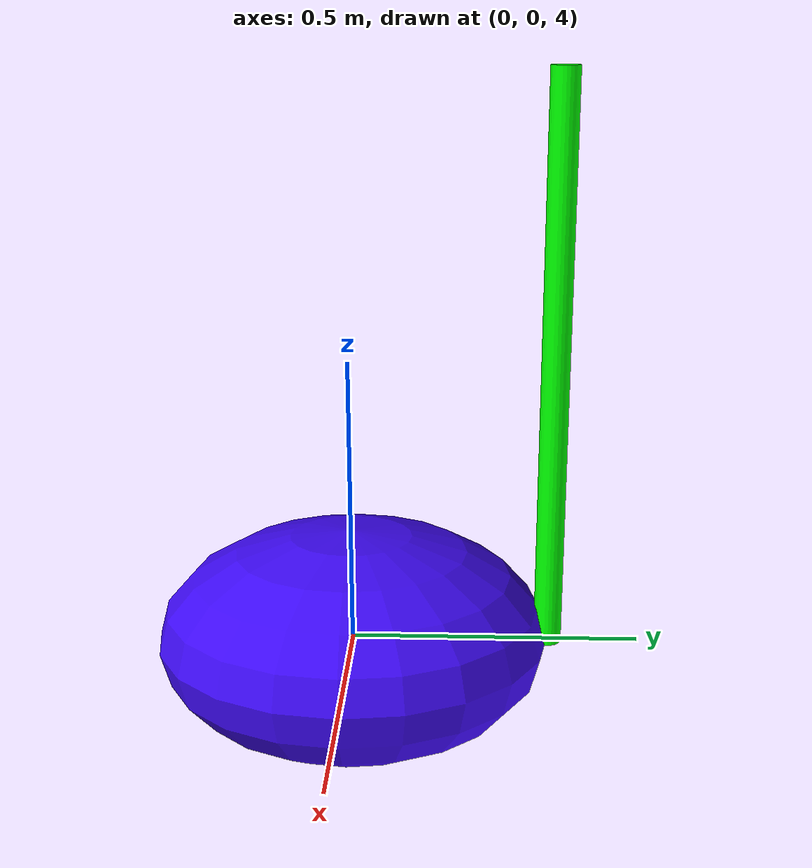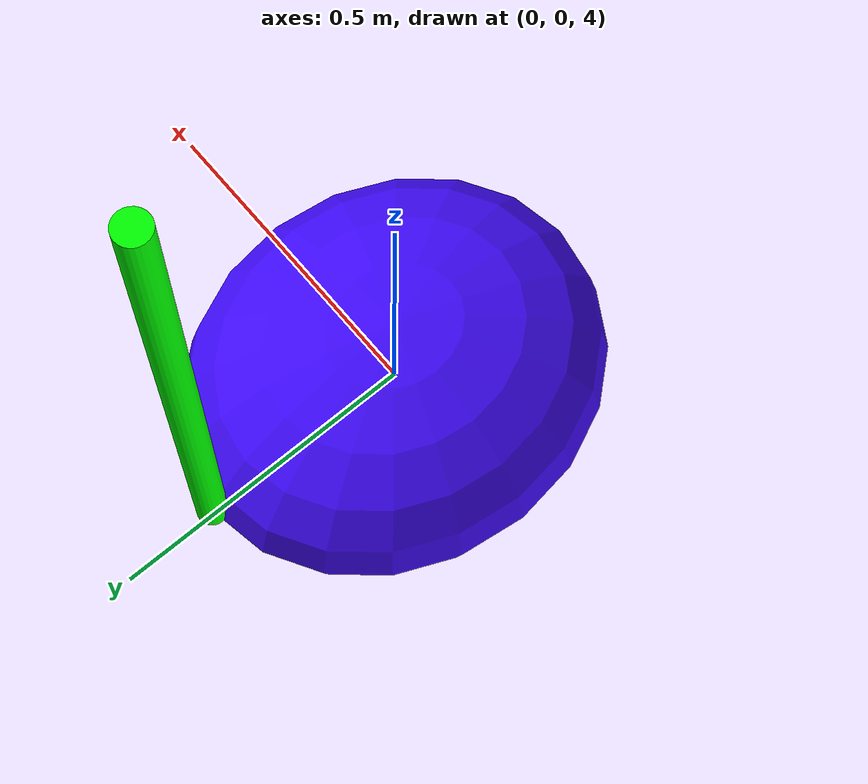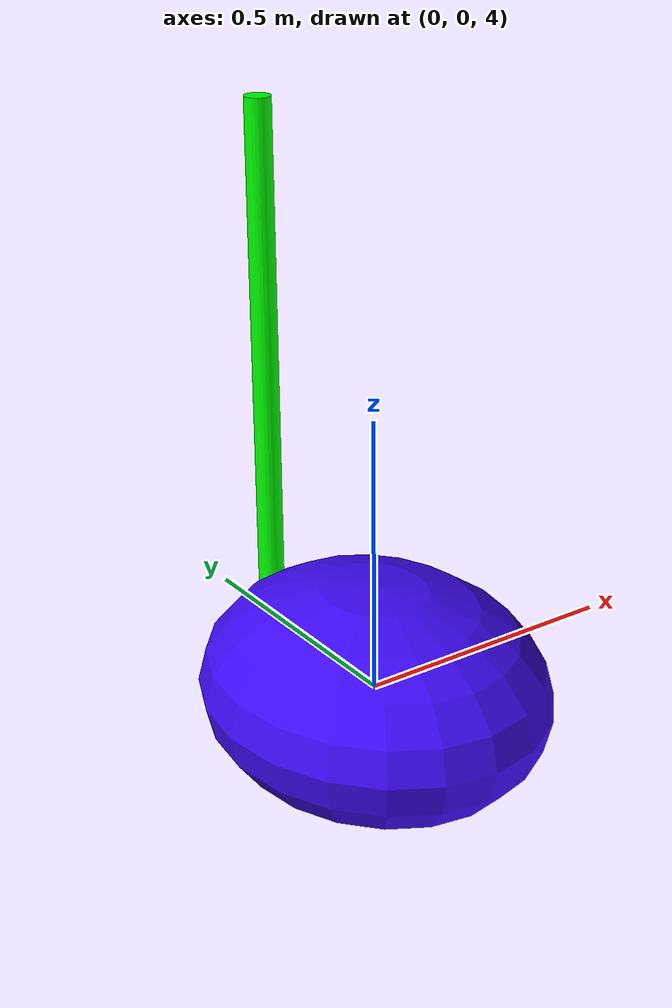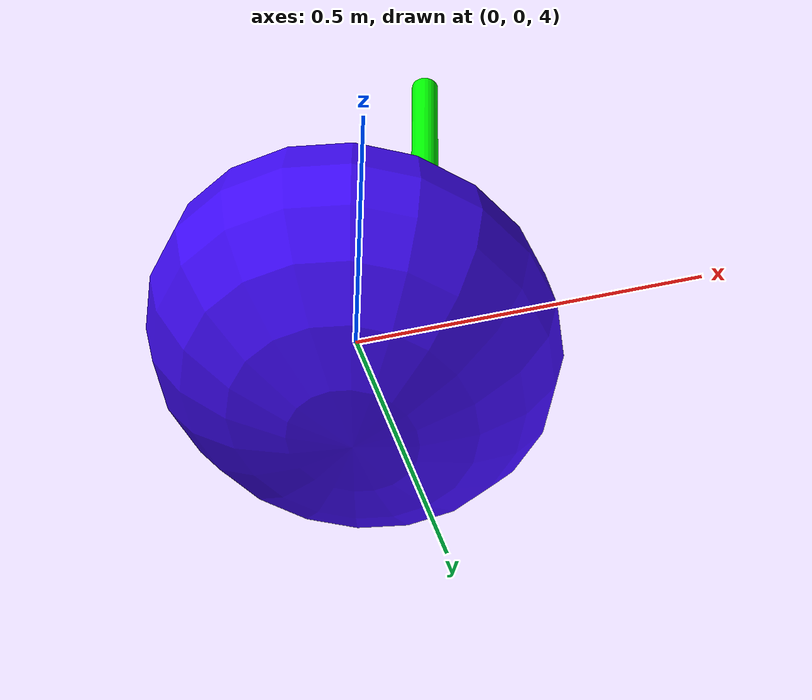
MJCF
<mujoco model="unnamed_model">
  <option timestep="0.01"/>
  <visual>
    <headlight ambient="0.5 0.5 0.5"/>
  </visual>
  <default>
    <default class="/"/>
  </default>
  <worldbody>
    <light name="//unnamed_light_0" class="/" pos="0 0 3" dir="0 0 -1" diffuse="0.5 0.5 0.5"/>
    <geom name="//unnamed_geom_0" class="/" type="plane" size="50 50 0.10000000000000001"/>
    <body name="//unnamed_body_0" pos="0 0 4">
      <joint name="//unnamed_joint_0" class="/" type="free"/>
      <geom name="//unnamed_geom_1" class="/" type="ellipsoid" size="0.29425776278815263 0.34262506358439171 0.20022717632945253" rgba="0.247 0.035000000000000003 0.97999999999999998 1" pos="0 0 0"/>
      <body name="limb0" pos="0.0067028941982569534 0.34262506358439171 0.48664092346801802">
        <geom name="//unnamed_geom_2" class="/" type="cylinder" size="0.023748427557249874 0.48664092346801802" rgba="0 1 0 1"/>
        <joint name="0_joint" class="/" type="hinge" pos="0 0 -0.48664092346801802" axis="0 1 0" range="-45 45"/>
      </body>
    </body>
  </worldbody>
  <actuator>
    <motor name="motor_0_joint" class="/" ctrllimited="true" ctrlrange="-45 45" gear="10" joint="0_joint"/>
  </actuator>
</mujoco>
